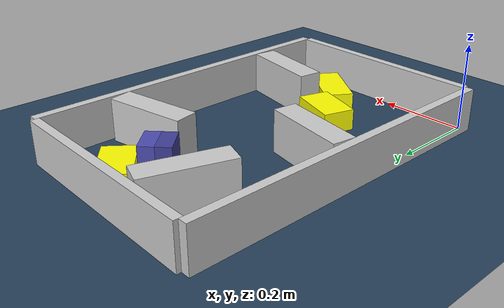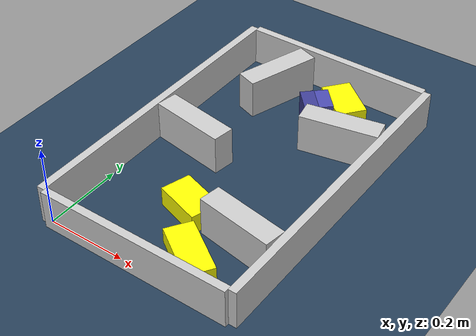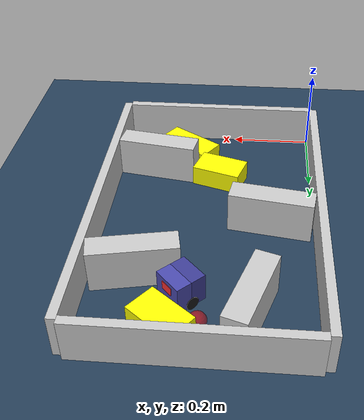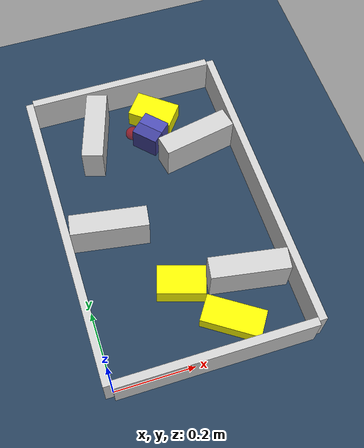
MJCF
<?xml version='1.0' encoding='utf-8'?>
<mujoco model="real_buildable">
  <compiler angle="degree" />
  <option timestep="0.002" integrator="implicitfast" iterations="100" cone="elliptic" />
  <default>
    <geom density="1" />
  </default>
  <asset>
    <texture builtin="gradient" height="3072" rgb1="0.3 0.5 0.7" rgb2="0 0 0" type="skybox" width="512" />
    <texture builtin="checker" height="300" mark="edge" markrgb="0.8 0.8 0.8" name="groundplane" rgb1="0.2 0.3 0.4" rgb2="0.1 0.2 0.3" type="2d" width="300" />
    <material name="groundplane" reflectance="0.2" texrepeat="5 5" texture="groundplane" texuniform="true" />
  </asset>
  <worldbody>
    <light dir="0 0 -1" directional="true" pos="0 0 1.5" />
    <geom name="floor" type="plane" condim="4" friction="0.5 0.005 0.001" material="groundplane" size="0 0 0.05" />
    <body name="walls">
      <geom name="wall_boundary_left" type="box" condim="4" friction="1.0 0.005 0.0001" rgba="0.8 0.8 0.8 1" pos="-0.010000 0.387500 0.050000" euler="0 0 0.000000" size="0.010000 0.397500 0.050000" />
      <geom name="wall_boundary_right" type="box" condim="4" friction="1.0 0.005 0.0001" rgba="0.8 0.8 0.8 1" pos="0.500000 0.387500 0.050000" euler="0 0 0.000000" size="0.010000 0.397500 0.050000" />
      <geom name="wall_boundary_bottom" type="box" condim="4" friction="1.0 0.005 0.0001" rgba="0.8 0.8 0.8 1" pos="0.245000 -0.010000 0.050000" euler="0 0 0.000000" size="0.245000 0.010000 0.050000" />
      <geom name="wall_boundary_top" type="box" condim="4" friction="1.0 0.005 0.0001" rgba="0.8 0.8 0.8 1" pos="0.245000 0.785000 0.050000" euler="0 0 0.000000" size="0.245000 0.010000 0.050000" />
      <geom name="wall_inner_1" type="box" condim="4" friction="1.0 0.005 0.0001" rgba="0.8 0.8 0.8 1" pos="0.389365 0.173598 0.050000" euler="0 0 -9.160550" size="0.097500 0.027500 0.050000" />
      <geom name="wall_inner_2" type="box" condim="4" friction="1.0 0.005 0.0001" rgba="0.8 0.8 0.8 1" pos="0.100574 0.383341 0.050000" euler="0 0 -8.868566" size="0.097500 0.027500 0.050000" />
      <geom name="wall_inner_3" type="box" condim="4" friction="1.0 0.005 0.0001" rgba="0.8 0.8 0.8 1" pos="0.389000 0.571000 0.050000" euler="0 0 11.200000" size="0.097500 0.027500 0.050000" />
      <geom name="wall_inner_4" type="box" condim="4" friction="1.0 0.005 0.0001" rgba="0.8 0.8 0.8 1" pos="0.140000 0.670000 0.050000" euler="0 0 71.700000" size="0.097500 0.027500 0.050000" />
    </body>
    <body name="car" pos="0.28200034153771453 0.63111879099335622 0.01" quat="0.92920384302185366 0 0 0.36956760966488716">
      <freejoint name="car_freejoint" />
      <inertial pos="0 0 0.0375" mass="0.35" diaginertia="0.000266 0.000266 0.000286" />
      <geom name="front_chassis_collision" type="box" pos="0.0175 0 0.0375" size="0.0175 0.035 0.0325" rgba="0.3 0.3 0.7 1" />
      <geom name="rear_chassis_collision" type="box" pos="-0.0175 0 0.0375" size="0.0175 0.035 0.0325" rgba="0.25 0.25 0.6 1" />
      <geom name="front_marker" type="box" pos="0.034 0 0.0505" size="0.002 0.015 0.01" rgba="1 0.2 0.2 1" contype="0" conaffinity="0" />
      <body name="rear_support_body" pos="-0.03 0 0.0025">
        <joint name="rear_caster_joint" type="ball" damping="0.0001" />
        <inertial pos="0 0 0" mass="0.025" diaginertia="0.000001 0.000001 0.000001" />
        <geom name="rear_support" type="sphere" pos="0 0 0" size="0.0025" friction="0 0 0" rgba="0.7 0.1 0.1 1" />
      </body>
      <body name="front_support_body" pos="0.03 0 0.0025">
        <joint name="front_caster_joint" type="ball" damping="0.0001" />
        <inertial pos="0 0 0" mass="0.025" diaginertia="0.000001 0.000001 0.000001" />
        <geom name="front_support" type="sphere" pos="0 0 0" size="0.0025" friction="0 0 0" rgba="0.1 0.7 0.1 1" />
      </body>
      <body name="left_wheel" pos="0 0.0375 0.015">
        <inertial pos="0 0 0" mass="0.05" diaginertia="0.000003 0.000006 0.000003" />
        <joint name="left_wheel_joint" type="hinge" axis="0 1 0" damping="0.01" armature="0.0001" />
        <geom name="left_wheel_collision" type="cylinder" size="0.015 0.0005" euler="90 0 0" rgba="0.1 0.1 0.1 1" />
      </body>
      <body name="right_wheel" pos="0 -0.0375 0.015">
        <inertial pos="0 0 0" mass="0.05" diaginertia="0.000003 0.000006 0.000003" />
        <joint name="right_wheel_joint" type="hinge" axis="0 1 0" damping="0.01" armature="0.0001" />
        <geom name="right_wheel_collision" type="cylinder" size="0.015 0.0005" euler="90 0 0" rgba="0.1 0.1 0.1 1" />
      </body>
    </body>
    <body name="obstacle_0_movable">
      <geom name="obstacle_0_movable" condim="4" pos="0.22991541416880529 0.20138489691236303 0.025000000000000001" friction="1 0.005 0.0001" rgba="1 1 0 1" size="0.037500 0.060000 0.025000" type="box" mass="0.1" quat="0.80616908566649748 0 0 0.59168522485832231" />
      <joint type="free" />
    </body>
    <body name="obstacle_1_movable">
      <geom name="obstacle_1_movable" condim="4" pos="0.31432383478476478 0.70845327163683114 0.025000000000000001" friction="1 0.005 0.0001" rgba="1 1 0 1" size="0.037500 0.060000 0.025000" type="box" mass="0.1" quat="0.899925760870664 0 0 0.43604314571078462" />
      <joint type="free" />
    </body>
    <body name="obstacle_2_movable">
      <geom name="obstacle_2_movable" condim="4" pos="0.3211677291531404 0.08018601850018893 0.02" friction="1 0.005 0.0001" rgba="1 1 0 1" size="0.035000 0.075000 0.020000" type="box" mass="0.1" quat="0.88189959471020885 0 0 0.47143727562632276" />
      <joint type="free" />
    </body>
    <site name="goal" type="sphere" pos="0.245000 0.680000 0.0" size="0.02" rgba="1 0 0 0.5" />
  </worldbody>
  <actuator>
    <velocity name="left_wheel_drive" joint="left_wheel_joint" ctrlrange="-25 25" kv="0.75" forcerange="-0.5 0.5" />
    <velocity name="right_wheel_drive" joint="right_wheel_joint" ctrlrange="-25 25" kv="0.75" forcerange="-0.5 0.5" />
  </actuator>
</mujoco>
